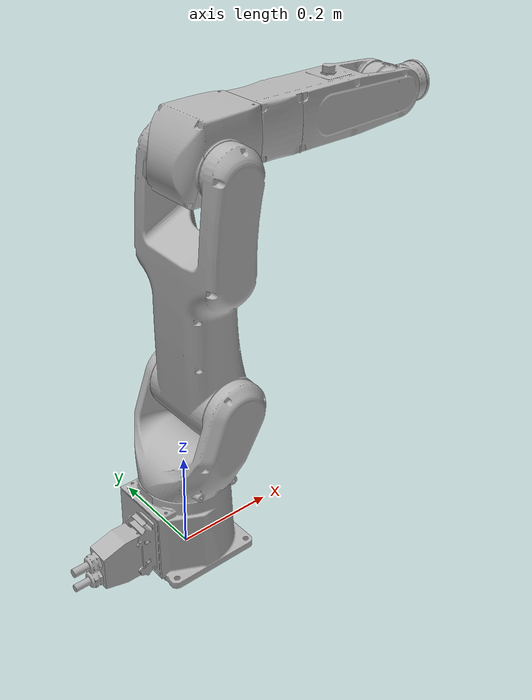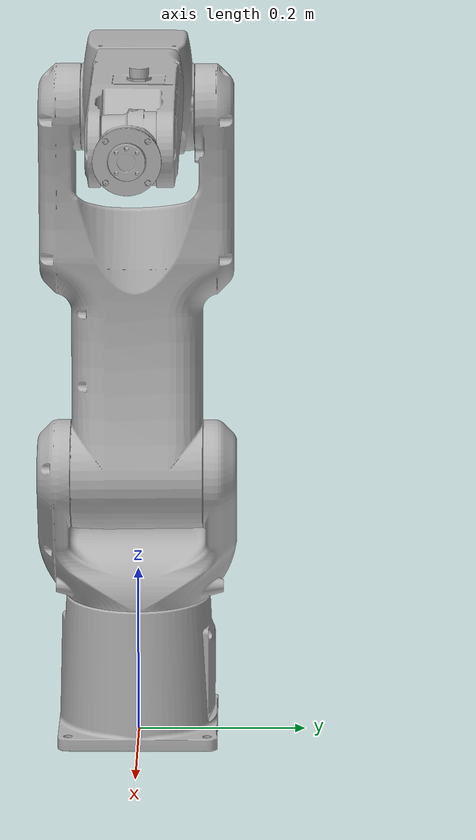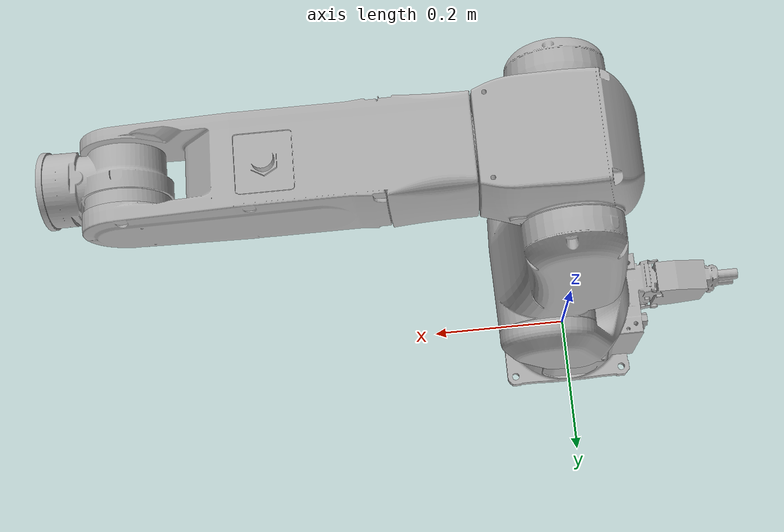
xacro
<?xml version="1.0" ?>
<robot name="LR_Mate-200iD-7L_rear-cable-exit" xmlns:xacro="http://www.ros.org/wiki/xacro">

<xacro:include filename="$(find LR_Mate-200iD-7L_rear-cable-exit_description)/urdf/materials.xacro" />
<xacro:include filename="$(find LR_Mate-200iD-7L_rear-cable-exit_description)/urdf/LR_Mate-200iD-7L_rear-cable-exit.trans" />
<xacro:include filename="$(find LR_Mate-200iD-7L_rear-cable-exit_description)/urdf/LR_Mate-200iD-7L_rear-cable-exit.gazebo" />
<link name="base_link">
  <inertial>
    <origin xyz="-0.020896786437573707 -0.002865040209298718 0.08187568387547586" rpy="0 0 0"/>
    <mass value="41.02118056052303"/>
    <inertia ixx="0.171046" iyy="0.269042" izz="0.264022" ixy="-0.014386" iyz="-0.000951" ixz="1.7e-05"/>
  </inertial>
  <visual>
    <origin xyz="0 0 0" rpy="0 0 0"/>
    <geometry>
      <mesh filename="package://LR_Mate-200iD-7L_rear-cable-exit_description/meshes/base_link.stl" scale="0.001 0.001 0.001"/>
    </geometry>
    <material name="silver"/>
  </visual>
  <collision>
    <origin xyz="0 0 0" rpy="0 0 0"/>
    <geometry>
      <mesh filename="package://LR_Mate-200iD-7L_rear-cable-exit_description/meshes/base_link.stl" scale="0.001 0.001 0.001"/>
    </geometry>
  </collision>
</link>

<link name="LR_Mate_200iD_7L_J6RB_cover_1">
  <inertial>
    <origin xyz="0.0030769105063848112 -0.022626999486451884 -0.022627002983735878" rpy="0 0 0"/>
    <mass value="0.053319637184794905"/>
    <inertia ixx="5.6e-05" iyy="2.8e-05" izz="2.8e-05" ixy="-0.0" iyz="0.0" ixz="0.0"/>
  </inertial>
  <visual>
    <origin xyz="-0.54 -0.022627 -0.827627" rpy="0 0 0"/>
    <geometry>
      <mesh filename="package://LR_Mate-200iD-7L_rear-cable-exit_description/meshes/LR_Mate_200iD_7L_J6RB_cover_1.stl" scale="0.001 0.001 0.001"/>
    </geometry>
    <material name="silver"/>
  </visual>
  <collision>
    <origin xyz="-0.54 -0.022627 -0.827627" rpy="0 0 0"/>
    <geometry>
      <mesh filename="package://LR_Mate-200iD-7L_rear-cable-exit_description/meshes/LR_Mate_200iD_7L_J6RB_cover_1.stl" scale="0.001 0.001 0.001"/>
    </geometry>
  </collision>
</link>

<link name="LR_Mate_200iD_7L_axis_1_1">
  <inertial>
    <origin xyz="0.017117829782352875 -0.0003327357881739591 0.08045714078701785" rpy="0 0 0"/>
    <mass value="25.025507724281777"/>
    <inertia ixx="0.227453" iyy="0.129262" izz="0.183055" ixy="-1.9e-05" iyz="0.000172" ixz="-0.026917"/>
  </inertial>
  <visual>
    <origin xyz="-0.0 -0.0 -0.167104" rpy="0 0 0"/>
    <geometry>
      <mesh filename="package://LR_Mate-200iD-7L_rear-cable-exit_description/meshes/LR_Mate_200iD_7L_axis_1_1.stl" scale="0.001 0.001 0.001"/>
    </geometry>
    <material name="silver"/>
  </visual>
  <collision>
    <origin xyz="-0.0 -0.0 -0.167104" rpy="0 0 0"/>
    <geometry>
      <mesh filename="package://LR_Mate-200iD-7L_rear-cable-exit_description/meshes/LR_Mate_200iD_7L_axis_1_1.stl" scale="0.001 0.001 0.001"/>
    </geometry>
  </collision>
</link>

<link name="LR_Mate_200iD_7L_axis_2_1">
  <inertial>
    <origin xyz="-0.009667741040001128 0.07694444841246284 0.175564425359446" rpy="0 0 0"/>
    <mass value="62.538023341031476"/>
    <inertia ixx="1.536298" iyy="1.37182" izz="0.281227" ixy="0.00075" iyz="-0.006959" ixz="0.021395"/>
  </inertial>
  <visual>
    <origin xyz="-0.05 0.078491 -0.33" rpy="0 0 0"/>
    <geometry>
      <mesh filename="package://LR_Mate-200iD-7L_rear-cable-exit_description/meshes/LR_Mate_200iD_7L_axis_2_1.stl" scale="0.001 0.001 0.001"/>
    </geometry>
    <material name="silver"/>
  </visual>
  <collision>
    <origin xyz="-0.05 0.078491 -0.33" rpy="0 0 0"/>
    <geometry>
      <mesh filename="package://LR_Mate-200iD-7L_rear-cable-exit_description/meshes/LR_Mate_200iD_7L_axis_2_1.stl" scale="0.001 0.001 0.001"/>
    </geometry>
  </collision>
</link>

<link name="LR_Mate_200iD_7L_axis_3_1">
  <inertial>
    <origin xyz="0.008475384528387649 0.06563350002433473 0.017696665180766624" rpy="0 0 0"/>
    <mass value="18.850460230642536"/>
    <inertia ixx="0.049783" iyy="0.057924" izz="0.057377" ixy="-0.000385" iyz="-0.000521" ixz="-0.006054"/>
  </inertial>
  <visual>
    <origin xyz="-0.05 0.064955 -0.77" rpy="0 0 0"/>
    <geometry>
      <mesh filename="package://LR_Mate-200iD-7L_rear-cable-exit_description/meshes/LR_Mate_200iD_7L_axis_3_1.stl" scale="0.001 0.001 0.001"/>
    </geometry>
    <material name="silver"/>
  </visual>
  <collision>
    <origin xyz="-0.05 0.064955 -0.77" rpy="0 0 0"/>
    <geometry>
      <mesh filename="package://LR_Mate-200iD-7L_rear-cable-exit_description/meshes/LR_Mate_200iD_7L_axis_3_1.stl" scale="0.001 0.001 0.001"/>
    </geometry>
  </collision>
</link>

<link name="LR_Mate_200iD_7L_axis_4_1">
  <inertial>
    <origin xyz="0.1500245301638382 0.004016723921991212 0.00028051764282432945" rpy="0 0 0"/>
    <mass value="22.693190455608324"/>
    <inertia ixx="0.037809" iyy="0.209411" izz="0.212881" ixy="-0.001913" iyz="3.3e-05" ixz="5e-05"/>
  </inertial>
  <visual>
    <origin xyz="-0.1401 0.0 -0.805" rpy="0 0 0"/>
    <geometry>
      <mesh filename="package://LR_Mate-200iD-7L_rear-cable-exit_description/meshes/LR_Mate_200iD_7L_axis_4_1.stl" scale="0.001 0.001 0.001"/>
    </geometry>
    <material name="silver"/>
  </visual>
  <collision>
    <origin xyz="-0.1401 0.0 -0.805" rpy="0 0 0"/>
    <geometry>
      <mesh filename="package://LR_Mate-200iD-7L_rear-cable-exit_description/meshes/LR_Mate_200iD_7L_axis_4_1.stl" scale="0.001 0.001 0.001"/>
    </geometry>
  </collision>
</link>

<link name="LR_Mate_200iD_7L_axis_5_1">
  <inertial>
    <origin xyz="0.015733337708009443 0.03232666711168098 -6.01609089836419e-05" rpy="0 0 0"/>
    <mass value="3.3977919662277167"/>
    <inertia ixx="0.002322" iyy="0.004355" izz="0.004169" ixy="0.000199" iyz="0.0" ixz="-1e-06"/>
  </inertial>
  <visual>
    <origin xyz="-0.47 0.02925 -0.805" rpy="0 0 0"/>
    <geometry>
      <mesh filename="package://LR_Mate-200iD-7L_rear-cable-exit_description/meshes/LR_Mate_200iD_7L_axis_5_1.stl" scale="0.001 0.001 0.001"/>
    </geometry>
    <material name="silver"/>
  </visual>
  <collision>
    <origin xyz="-0.47 0.02925 -0.805" rpy="0 0 0"/>
    <geometry>
      <mesh filename="package://LR_Mate-200iD-7L_rear-cable-exit_description/meshes/LR_Mate_200iD_7L_axis_5_1.stl" scale="0.001 0.001 0.001"/>
    </geometry>
  </collision>
</link>

<link name="LR_Mate_200iD_7L_axis_6_1">
  <inertial>
    <origin xyz="-0.005885565178660679 -6.590142225256426e-17 -0.0001732487818839612" rpy="0 0 0"/>
    <mass value="0.10510241753083373"/>
    <inertia ixx="2.2e-05" iyy="1.2e-05" izz="1.2e-05" ixy="-0.0" iyz="-0.0" ixz="0.0"/>
  </inertial>
  <visual>
    <origin xyz="-0.5495 0.0 -0.805" rpy="0 0 0"/>
    <geometry>
      <mesh filename="package://LR_Mate-200iD-7L_rear-cable-exit_description/meshes/LR_Mate_200iD_7L_axis_6_1.stl" scale="0.001 0.001 0.001"/>
    </geometry>
    <material name="silver"/>
  </visual>
  <collision>
    <origin xyz="-0.5495 0.0 -0.805" rpy="0 0 0"/>
    <geometry>
      <mesh filename="package://LR_Mate-200iD-7L_rear-cable-exit_description/meshes/LR_Mate_200iD_7L_axis_6_1.stl" scale="0.001 0.001 0.001"/>
    </geometry>
  </collision>
</link>

<joint name="Rigid 7" type="fixed">
  <origin xyz="0.07 0.051877 0.022627" rpy="0 0 0"/>
  <parent link="LR_Mate_200iD_7L_axis_5_1"/>
  <child link="LR_Mate_200iD_7L_J6RB_cover_1"/>
</joint>

<joint name="Revolute 1" type="continuous">
  <origin xyz="0.0 0.0 0.167104" rpy="0 0 0"/>
  <parent link="base_link"/>
  <child link="LR_Mate_200iD_7L_axis_1_1"/>
  <axis xyz="0.0 0.0 -1.0"/>
</joint>

<joint name="Revolute 2" type="continuous">
  <origin xyz="0.05 -0.078491 0.162896" rpy="0 0 0"/>
  <parent link="LR_Mate_200iD_7L_axis_1_1"/>
  <child link="LR_Mate_200iD_7L_axis_2_1"/>
  <axis xyz="0.0 -1.0 0.0"/>
</joint>

<joint name="Revolute 3" type="continuous">
  <origin xyz="0.0 0.013536 0.44" rpy="0 0 0"/>
  <parent link="LR_Mate_200iD_7L_axis_2_1"/>
  <child link="LR_Mate_200iD_7L_axis_3_1"/>
  <axis xyz="0.0 -1.0 0.0"/>
</joint>

<joint name="Revolute 4" type="continuous">
  <origin xyz="0.0901 0.064955 0.035" rpy="0 0 0"/>
  <parent link="LR_Mate_200iD_7L_axis_3_1"/>
  <child link="LR_Mate_200iD_7L_axis_4_1"/>
  <axis xyz="1.0 0.0 0.0"/>
</joint>

<joint name="Revolute 5" type="continuous">
  <origin xyz="0.3299 -0.02925 0.0" rpy="0 0 0"/>
  <parent link="LR_Mate_200iD_7L_axis_4_1"/>
  <child link="LR_Mate_200iD_7L_axis_5_1"/>
  <axis xyz="-0.0 -1.0 -0.0"/>
</joint>

<joint name="Revolute 6" type="continuous">
  <origin xyz="0.0795 0.02925 0.0" rpy="0 0 0"/>
  <parent link="LR_Mate_200iD_7L_axis_5_1"/>
  <child link="LR_Mate_200iD_7L_axis_6_1"/>
  <axis xyz="-1.0 0.0 -0.0"/>
</joint>

</robot>

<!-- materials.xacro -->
<robot name="LR_Mate-200iD-7L_rear-cable-exit" xmlns:xacro="http://www.ros.org/wiki/xacro" >

<material name="silver">
  <color rgba="0.700 0.700 0.700 1.000"/>
</material>

</robot>

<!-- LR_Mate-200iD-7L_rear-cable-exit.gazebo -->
<robot name="LR_Mate-200iD-7L_rear-cable-exit" xmlns:xacro="http://www.ros.org/wiki/xacro" >

<xacro:property name="body_color" value="Gazebo/Silver" />

<gazebo>
  <plugin name="control" filename="libgazebo_ros_control.so"/>
</gazebo>
<gazebo reference="base_link">
  <material>${body_color}</material>
  <mu1>0.2</mu1>
  <mu2>0.2</mu2>
  <selfCollide>true</selfCollide>
  <gravity>true</gravity>
</gazebo>

<gazebo reference="LR_Mate_200iD_7L_J6RB_cover_1">
  <material>${body_color}</material>
  <mu1>0.2</mu1>
  <mu2>0.2</mu2>
  <selfCollide>true</selfCollide>
</gazebo>

<gazebo reference="LR_Mate_200iD_7L_axis_1_1">
  <material>${body_color}</material>
  <mu1>0.2</mu1>
  <mu2>0.2</mu2>
  <selfCollide>true</selfCollide>
</gazebo>

<gazebo reference="LR_Mate_200iD_7L_axis_2_1">
  <material>${body_color}</material>
  <mu1>0.2</mu1>
  <mu2>0.2</mu2>
  <selfCollide>true</selfCollide>
</gazebo>

<gazebo reference="LR_Mate_200iD_7L_axis_3_1">
  <material>${body_color}</material>
  <mu1>0.2</mu1>
  <mu2>0.2</mu2>
  <selfCollide>true</selfCollide>
</gazebo>

<gazebo reference="LR_Mate_200iD_7L_axis_4_1">
  <material>${body_color}</material>
  <mu1>0.2</mu1>
  <mu2>0.2</mu2>
  <selfCollide>true</selfCollide>
</gazebo>

<gazebo reference="LR_Mate_200iD_7L_axis_5_1">
  <material>${body_color}</material>
  <mu1>0.2</mu1>
  <mu2>0.2</mu2>
  <selfCollide>true</selfCollide>
</gazebo>

<gazebo reference="LR_Mate_200iD_7L_axis_6_1">
  <material>${body_color}</material>
  <mu1>0.2</mu1>
  <mu2>0.2</mu2>
  <selfCollide>true</selfCollide>
</gazebo>

</robot>
